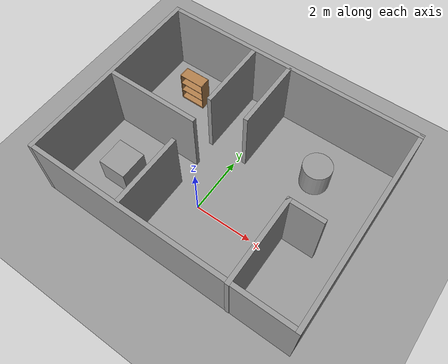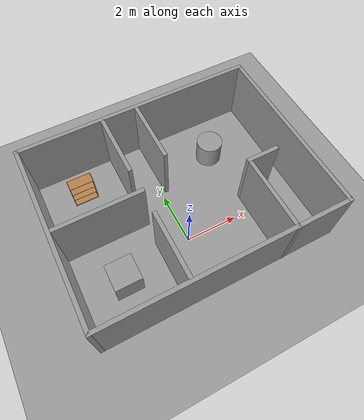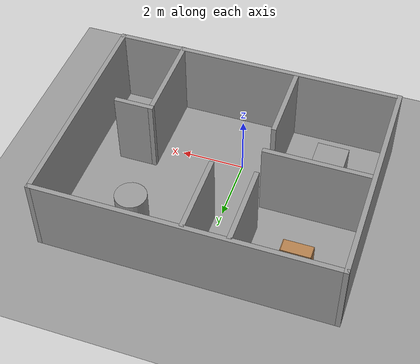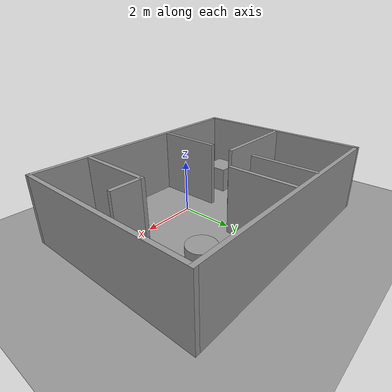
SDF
<sdf version="1.6">
 <world name="default">
  <light name="sun" type="directional">
   <pose>0 0 10 0 -0 0</pose>
   <diffuse>0.8 0.8 0.8 1</diffuse>
   <specular>0.2 0.2 0.2 1</specular>
   <attenuation>
    <range>1000</range>
    <constant>0.9</constant>
    <linear>0.01</linear>
    <quadratic>0.001</quadratic>
   </attenuation>
   <direction>0.5 0.1 -0.9</direction>
  </light>
  <scene><ambient>0.4 0.4 0.4 1</ambient><background>0.7 0.7 0.7 1</background><shadows>1</shadows></scene>
  <physics name="default_physics" default="0" type="ode">
   <max_step_size>0.01</max_step_size>
   <real_time_factor>1</real_time_factor>
   <real_time_update_rate>100</real_time_update_rate>
  </physics>
  <model name="ground_plane_0">
   <static>1</static>
   <link name="link">
    <collision name="collision">
     <geometry><plane><normal>0 0 1</normal><size>100 100</size></plane></geometry>
     <surface><friction><ode><mu>100</mu><mu2>50</mu2></ode></friction></surface>
    </collision>
    <visual name="visual">
     <cast_shadows>0</cast_shadows>
     <geometry><plane><normal>0 0 1</normal><size>100 100</size></plane></geometry>
     <material>
      <script><uri>file://media/materials/scripts/gazebo.material</uri><name>Gazebo/Grey</name></script>
     </material>
    </visual>
    <velocity_decay><linear>0</linear><angular>0</angular></velocity_decay>
   </link>
   <pose>0.497681 0 0 0 -0 0</pose>
  </model>
  <gravity>0 0 -9.8</gravity>
  <magnetic_field>6e-06 2.3e-05 -4.2e-05</magnetic_field>
  <atmosphere type="adiabatic"/>
  <spherical_coordinates>
   <surface_model>EARTH_WGS84</surface_model>
   <latitude_deg>0</latitude_deg>
   <longitude_deg>0</longitude_deg>
   <elevation>0</elevation>
   <heading_deg>0</heading_deg>
  </spherical_coordinates>
  <model name="home">
   <pose>0.23488 1.30291 0 0 -0 0</pose>
   <link name="Wall_0">
    <collision name="Wall_0_Collision">
     <geometry><box><size>7 0.15 2.5</size></box></geometry>
     <pose>0 0 1.25 0 -0 0</pose>
    </collision>
    <visual name="Wall_0_Visual">
     <pose>0 0 1.25 0 -0 0</pose>
     <geometry><box><size>7 0.15 2.5</size></box></geometry>
     <material>
      <script><uri>file://media/materials/scripts/gazebo.material</uri><name>Gazebo/Grey</name></script>
      <ambient>1 1 1 1</ambient>
     </material>
     <meta><layer>0</layer></meta>
    </visual>
    <pose>-4.55 0.006053 0 0 0 -1.5708</pose>
   </link>
   <link name="Wall_10">
    <collision name="Wall_10_Collision">
     <geometry><box><size>2.5 0.15 2.5</size></box></geometry>
     <pose>0 0 1.25 0 -0 0</pose>
    </collision>
    <visual name="Wall_10_Visual">
     <pose>0 0 1.25 0 -0 0</pose>
     <geometry><box><size>2.5 0.15 2.5</size></box></geometry>
     <material>
      <script><uri>file://media/materials/scripts/gazebo.material</uri><name>Gazebo/Grey</name></script>
      <ambient>1 1 1 1</ambient>
     </material>
     <meta><layer>0</layer></meta>
    </visual>
    <pose>-1.305 -2.10892 0 0 0 -1.5708</pose>
   </link>
   <link name="Wall_16">
    <collision name="Wall_16_Collision">
     <geometry><box><size>3 0.15 2.5</size></box></geometry>
     <pose>0 0 1.25 0 -0 0</pose>
    </collision>
    <visual name="Wall_16_Visual">
     <pose>0 0 1.25 0 -0 0</pose>
     <geometry><box><size>3 0.15 2.5</size></box></geometry>
     <material>
      <script><uri>file://media/materials/scripts/gazebo.material</uri><name>Gazebo/Grey</name></script>
      <ambient>1 1 1 1</ambient>
     </material>
     <meta><layer>0</layer></meta>
    </visual>
    <pose>2.47286 -2.00605 0 0 0 -1.5708</pose>
   </link>
   <link name="Wall_2">
    <collision name="Wall_2_Collision">
     <geometry><box><size>9.25 0.15 2.5</size></box></geometry>
     <pose>0 0 1.25 0 -0 0</pose>
    </collision>
    <visual name="Wall_2_Visual">
     <pose>0 0 1.25 0 -0 0</pose>
     <geometry><box><size>9.25 0.15 2.5</size></box></geometry>
     <material>
      <script><uri>file://media/materials/scripts/gazebo.material</uri><name>Gazebo/Grey</name></script>
      <ambient>1 1 1 1</ambient>
     </material>
     <meta><layer>0</layer></meta>
    </visual>
    <pose>0 3.43105 0 0 -0 0</pose>
   </link>
   <link name="Wall_20">
    <collision name="Wall_20_Collision">
     <geometry><box><size>1.25 0.15 2.5</size></box></geometry>
     <pose>0 0 1.25 0 -0 0</pose>
    </collision>
    <visual name="Wall_20_Visual">
     <pose>0 0 1.25 0 -0 0</pose>
     <geometry><box><size>1.25 0.15 2.5</size></box></geometry>
     <material>
      <script><uri>file://media/materials/scripts/gazebo.material</uri><name>Gazebo/Grey</name></script>
      <ambient>1 1 1 1</ambient>
     </material>
     <meta><layer>0</layer></meta>
    </visual>
    <pose>3.02286 -0.581053 0 0 -0 0</pose>
   </link>
   <link name="Wall_22">
    <collision name="Wall_22_Collision">
     <geometry><box><size>2.5 0.15 2.5</size></box></geometry>
     <pose>0 0 1.25 0 -0 0</pose>
    </collision>
    <visual name="Wall_22_Visual">
     <pose>0 0 1.25 0 -0 0</pose>
     <geometry><box><size>2.5 0.15 2.5</size></box></geometry>
     <material>
      <script><uri>file://media/materials/scripts/gazebo.material</uri><name>Gazebo/Grey</name></script>
      <ambient>1 1 1 1</ambient>
     </material>
     <meta><layer>0</layer></meta>
    </visual>
    <pose>0.006759 2.16893 0 0 0 -1.5708</pose>
   </link>
   <link name="Wall_3">
    <collision name="Wall_3_Collision">
     <geometry><box><size>7 0.15 2.5</size></box></geometry>
     <pose>0 0 1.25 0 -0 0</pose>
    </collision>
    <visual name="Wall_3_Visual">
     <pose>0 0 1.25 0 -0 0</pose>
     <geometry><box><size>7 0.15 2.5</size></box></geometry>
     <material>
      <script><uri>file://media/materials/scripts/gazebo.material</uri><name>Gazebo/Grey</name></script>
      <ambient>1 1 1 1</ambient>
     </material>
     <meta><layer>0</layer></meta>
    </visual>
    <pose>4.55 0.006053 0 0 0 -1.5708</pose>
   </link>
   <link name="Wall_4">
    <collision name="Wall_4_Collision">
     <geometry><box><size>9.25 0.15 2.5</size></box></geometry>
     <pose>0 0 1.25 0 -0 0</pose>
    </collision>
    <visual name="Wall_4_Visual">
     <pose>0 0 1.25 0 -0 0</pose>
     <geometry><box><size>9.25 0.15 2.5</size></box></geometry>
     <material>
      <script><uri>file://media/materials/scripts/gazebo.material</uri><name>Gazebo/Grey</name></script>
      <ambient>1 1 1 1</ambient>
     </material>
     <meta><layer>0</layer></meta>
    </visual>
    <pose>0 -3.41895 0 0 -0 3.14159</pose>
   </link>
   <link name="Wall_6">
    <collision name="Wall_6_Collision">
     <geometry><box><size>2.5 0.15 2.5</size></box></geometry>
     <pose>0 0 1.25 0 -0 0</pose>
    </collision>
    <visual name="Wall_6_Visual">
     <pose>0 0 1.25 0 -0 0</pose>
     <geometry><box><size>2.5 0.15 2.5</size></box></geometry>
     <material>
      <script><uri>file://media/materials/scripts/gazebo.material</uri><name>Gazebo/Grey</name></script>
      <ambient>1 1 1 1</ambient>
     </material>
     <meta><layer>0</layer></meta>
    </visual>
    <pose>-1.33998 2.15144 0 0 0 -1.5708</pose>
   </link>
   <link name="Wall_8">
    <collision name="Wall_8_Collision">
     <geometry><box><size>3.25 0.15 2.5</size></box></geometry>
     <pose>0 0 1.25 0 -0 0</pose>
    </collision>
    <visual name="Wall_8_Visual">
     <pose>0 0 1.25 0 -0 0</pose>
     <geometry><box><size>3.25 0.15 2.5</size></box></geometry>
     <material>
      <script><uri>file://media/materials/scripts/gazebo.material</uri><name>Gazebo/Grey</name></script>
      <ambient>1 1 1 1</ambient>
     </material>
     <meta><layer>0</layer></meta>
    </visual>
    <pose>-2.85074 0.020821 0 0 -0 0</pose>
   </link>
   <static>1</static>
  </model>
  <model name="bookshelf">
   <static>1</static>
   <link name="link">
    <inertial><mass>1</mass></inertial>
    <collision name="back">
     <pose>0 0.005 0.6 0 -0 0</pose>
     <geometry><box><size>0.9 0.01 1.2</size></box></geometry>
    </collision>
    <visual name="visual1">
     <pose>0 0.005 0.6 0 -0 0</pose>
     <geometry><box><size>0.9 0.01 1.2</size></box></geometry>
     <material>
      <script><uri>file://media/materials/scripts/gazebo.material</uri><name>Gazebo/Wood</name></script>
     </material>
    </visual>
    <collision name="left_side">
     <pose>0.45 -0.195 0.6 0 -0 0</pose>
     <geometry><box><size>0.02 0.4 1.2</size></box></geometry>
    </collision>
    <visual name="visual2">
     <pose>0.45 -0.195 0.6 0 -0 0</pose>
     <geometry><box><size>0.02 0.4 1.2</size></box></geometry>
     <material>
      <script><uri>file://media/materials/scripts/gazebo.material</uri><name>Gazebo/Wood</name></script>
     </material>
    </visual>
    <collision name="right_side">
     <pose>-0.45 -0.195 0.6 0 -0 0</pose>
     <geometry><box><size>0.02 0.4 1.2</size></box></geometry>
    </collision>
    <visual name="visual3">
     <pose>-0.45 -0.195 0.6 0 -0 0</pose>
     <geometry><box><size>0.02 0.4 1.2</size></box></geometry>
     <material>
      <script><uri>file://media/materials/scripts/gazebo.material</uri><name>Gazebo/Wood</name></script>
     </material>
    </visual>
    <collision name="bottom">
     <pose>0 -0.195 0.03 0 -0 0</pose>
     <geometry><box><size>0.88 0.4 0.06</size></box></geometry>
    </collision>
    <visual name="visual4">
     <pose>0 -0.195 0.03 0 -0 0</pose>
     <geometry><box><size>0.88 0.4 0.06</size></box></geometry>
     <material>
      <script><uri>file://media/materials/scripts/gazebo.material</uri><name>Gazebo/Wood</name></script>
     </material>
    </visual>
    <collision name="top">
     <pose>0 -0.195 1.19 0 -0 0</pose>
     <geometry><box><size>0.88 0.4 0.02</size></box></geometry>
    </collision>
    <visual name="visual5">
     <pose>0 -0.195 1.19 0 -0 0</pose>
     <geometry><box><size>0.88 0.4 0.02</size></box></geometry>
     <material>
      <script><uri>file://media/materials/scripts/gazebo.material</uri><name>Gazebo/Wood</name></script>
     </material>
    </visual>
    <collision name="low_shelf">
     <pose>0 -0.195 0.43 0 -0 0</pose>
     <geometry><box><size>0.88 0.4 0.02</size></box></geometry>
    </collision>
    <visual name="visual6">
     <pose>0 -0.195 0.43 0 -0 0</pose>
     <geometry><box><size>0.88 0.4 0.02</size></box></geometry>
     <material>
      <script><uri>file://media/materials/scripts/gazebo.material</uri><name>Gazebo/Wood</name></script>
     </material>
    </visual>
    <collision name="high_shelf">
     <pose>0 -0.195 0.8 0 -0 0</pose>
     <geometry><box><size>0.88 0.4 0.02</size></box></geometry>
    </collision>
    <visual name="visual7">
     <pose>0 -0.195 0.8 0 -0 0</pose>
     <geometry><box><size>0.88 0.4 0.02</size></box></geometry>
     <material>
      <script><uri>file://media/materials/scripts/gazebo.material</uri><name>Gazebo/Wood</name></script>
     </material>
    </visual>
   </link>
   <pose>-2.7123 3.66174 0 0 -0 0</pose>
  </model>
  <model name="unit_cylinder">
   <pose>2.54744 2.98659 0.49912 0 0 -4e-06</pose>
   <link name="link">
    <inertial>
     <mass>1</mass>
     <inertia><ixx>0.145833</ixx><ixy>0</ixy><ixz>0</ixz><iyy>0.145833</iyy><iyz>0</iyz><izz>0.125</izz></inertia>
    </inertial>
    <collision name="collision">
     <geometry><cylinder><radius>0.5</radius><length>1</length></cylinder></geometry>
    </collision>
    <visual name="visual">
     <geometry><cylinder><radius>0.5</radius><length>1</length></cylinder></geometry>
     <material>
      <script><name>Gazebo/Grey</name><uri>file://media/materials/scripts/gazebo.material</uri></script>
     </material>
    </visual>
   </link>
  </model>
  <model name="unit_box">
   <pose>-2.69737 -0.390759 0.499798 -0.000404 1e-06 0</pose>
   <link name="link">
    <inertial>
     <mass>1</mass>
     <inertia>
      <ixx>0.166667</ixx>
      <ixy>0</ixy>
      <ixz>0</ixz>
      <iyy>0.166667</iyy>
      <iyz>0</iyz>
      <izz>0.166667</izz>
     </inertia>
    </inertial>
    <collision name="collision"><geometry><box><size>1 1 1</size></box></geometry></collision>
    <visual name="visual">
     <geometry><box><size>1 1 1</size></box></geometry>
     <material>
      <script><name>Gazebo/Grey</name><uri>file://media/materials/scripts/gazebo.material</uri></script>
     </material>
    </visual>
   </link>
  </model>
 </world>
</sdf>
